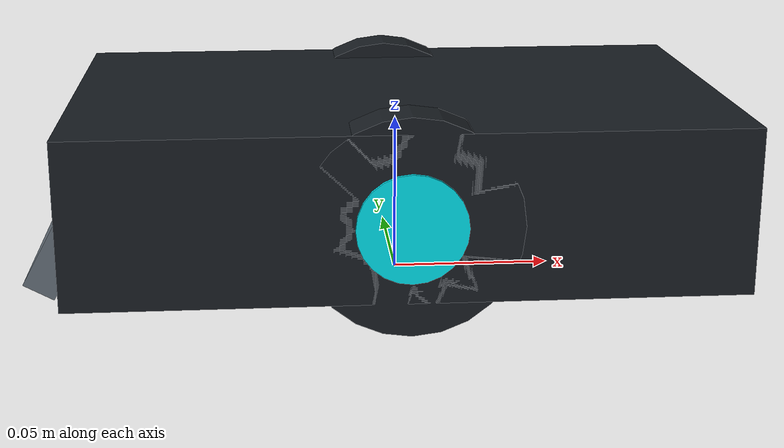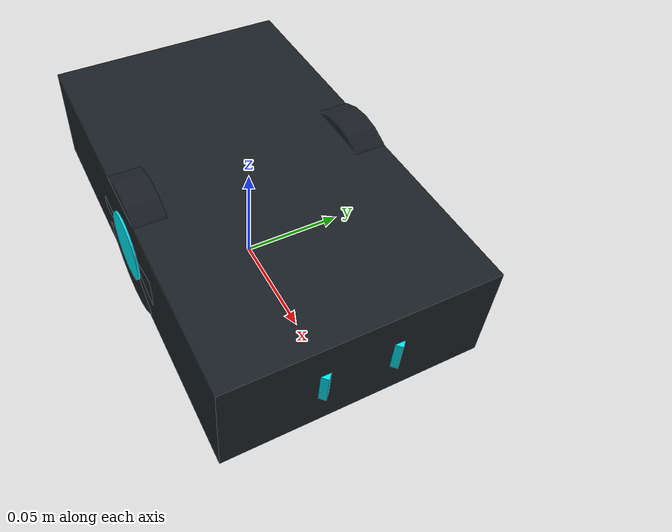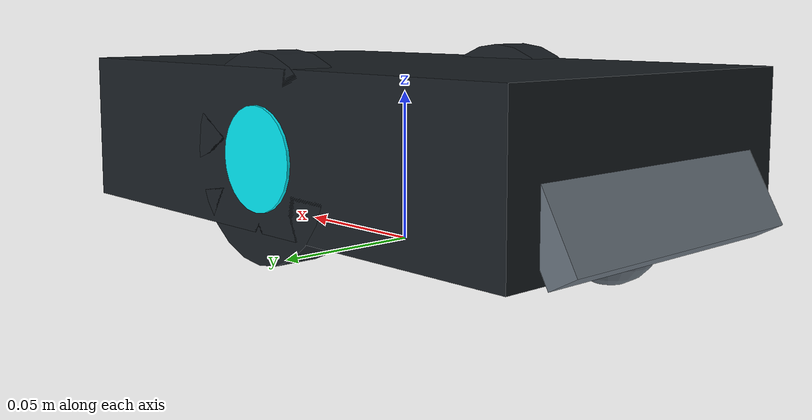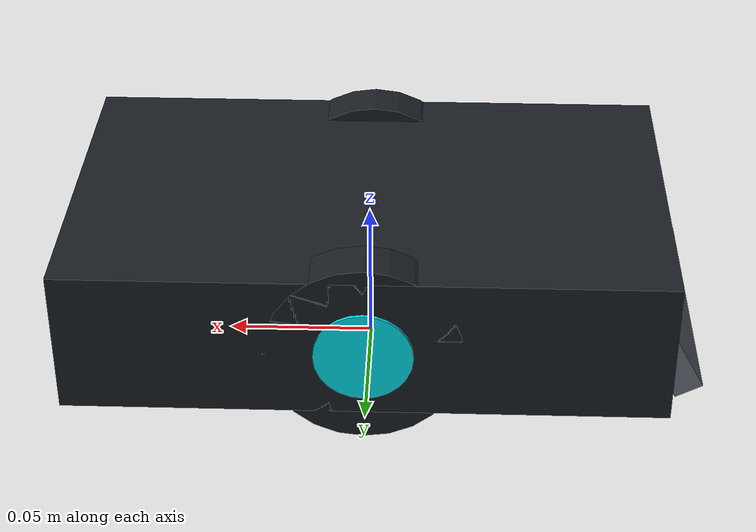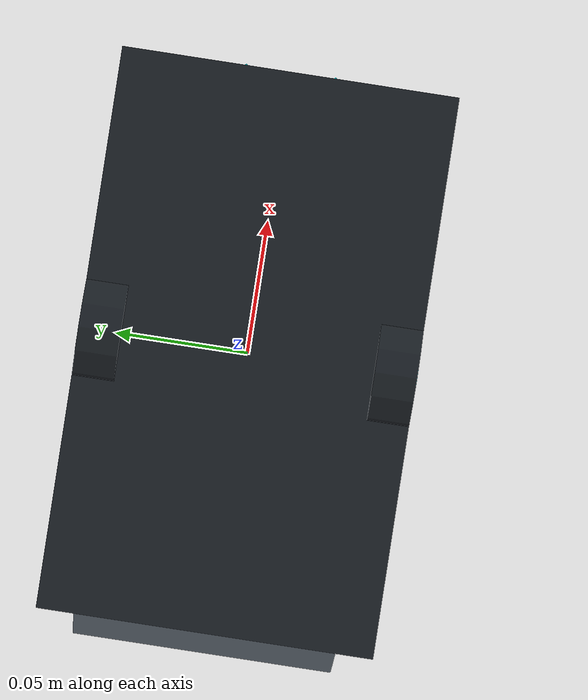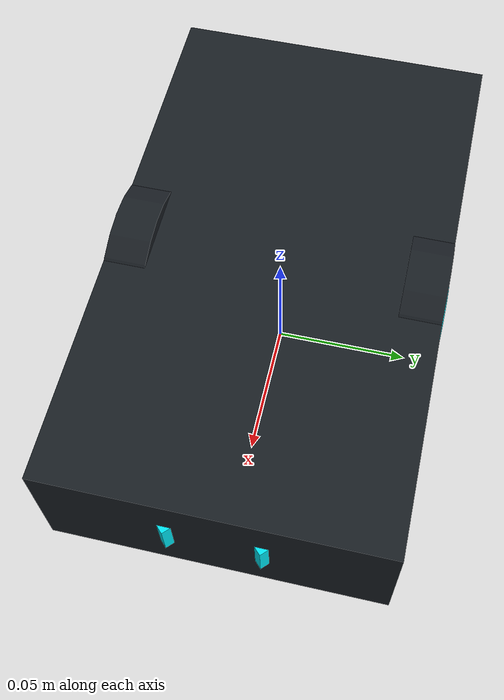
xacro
<robot name="my_car_camera" xmlns:xacro="http://wiki.ros.org/xacro">
    <xacro:include filename="gazebo_head.xacro" />
    <xacro:include filename="gazebo_car.xacro" />
    <xacro:include filename="gazebo_laser.xacro" />
    <xacro:include filename="gazebo_camera.xacro" />
    <xacro:include filename="gazebo_sensors.xacro" />

    <!-- 修复后的move.urdf.xacro内容 - 解决TF冲突 -->
    <!-- 传动实现:用于连接控制器与关节 -->
    <xacro:macro name="joint_trans" params="joint_name">
        <transmission name="${joint_name}_trans">
            <type>transmission_interface/SimpleTransmission</type>
            <joint name="${joint_name}">
                <hardwareInterface>hardware_interface/VelocityJointInterface</hardwareInterface>
            </joint>
            <actuator name="${joint_name}_motor">
                <hardwareInterface>hardware_interface/VelocityJointInterface</hardwareInterface>
                <mechanicalReduction>1</mechanicalReduction>
            </actuator>
        </transmission>
    </xacro:macro>

    <!-- 只为两个驱动轮配置传动装置 -->
    <xacro:joint_trans joint_name="left_wheel2base_link" />
    <xacro:joint_trans joint_name="right_wheel2base_link" />

    <!-- 修复后的差分驱动控制器 - 解决TF冲突和速度问题 -->
    <gazebo>
        <plugin name="differential_drive_controller" filename="libgazebo_ros_diff_drive.so">
            <rosDebugLevel>Info</rosDebugLevel>
            <publishWheelTF>true</publishWheelTF>           <!-- 让gazebo负责wheel TF -->
            <robotNamespace>/</robotNamespace>
            <publishTf>true</publishTf>                     <!-- 发布odom->base_footprint -->
            <publishWheelJointState>true</publishWheelJointState>  <!-- 发布关节状态 -->
            <alwaysOn>true</alwaysOn>
            <updateRate>20.0</updateRate>                   <!-- 降低更新频率，减少冲突 -->
            <legacyMode>true</legacyMode>
            <leftJoint>left_wheel2base_link</leftJoint>
            <rightJoint>right_wheel2base_link</rightJoint>
            <wheelSeparation>${base_link_width - wheel_length}</wheelSeparation>
            <wheelDiameter>${wheel_radius * 2}</wheelDiameter>
            <broadcastTF>true</broadcastTF>                 <!-- 确保发布TF -->
            <wheelTorque>100</wheelTorque>                  <!-- 增加扭矩 -->
            <wheelAcceleration>5.0</wheelAcceleration>      <!-- 增加加速度 -->
            <commandTopic>cmd_vel</commandTopic>
            <odometryFrame>odom</odometryFrame>
            <odometryTopic>odom</odometryTopic>
            <robotBaseFrame>base_footprint</robotBaseFrame>

            <!-- 添加噪声模型，提高仿真真实性 -->
            <odometrySource>world</odometrySource>          <!-- 使用world坐标系 -->
            <publishOdomTF>true</publishOdomTF>             <!-- 发布odom TF -->
        </plugin>
    </gazebo>
</robot>

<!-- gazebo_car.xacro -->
<!-- "赛博先锋" - 智能小车美学升级版 -->
<!-- 严格遵守约束: 不改变任何原有名称、参数、物理属性或轮子位置公式。 -->
<robot name="my_base" xmlns:xacro="http://wiki.ros.org/xacro">

    <xacro:property name="PI" value="3.1415926"/>

    <!-- [美化] 定义一套更具冲击力的专业配色方案 -->
    <material name="matte_black">
        <color rgba="0.1 0.12 0.14 1.0" />  <!-- 主体颜色: 哑光黑 -->
    </material>
    <material name="gunmetal_grey">
        <color rgba="0.4 0.44 0.48 1.0" />  <!-- 装甲颜色: 炮铜灰 -->
    </material>
    <material name="cyber_cyan_glow">
        <color rgba="0.0 0.9 0.95 1.0" />  <!-- 点缀颜色: 赛博青辉光 -->
    </material>
    <!-- 保留您原始的black材质定义 -->
    <material name="black">
        <color rgba="0.0 0.0 0.0 1.0" />
    </material>

    <!-- 核心物理参数 (保持您原始的定义不变) -->
 <!-- 核心物理参数 -->
<xacro:property name="base_footprint_radius" value="0.001" />
<xacro:property name="base_link_length" value="0.2" />
<!-- [修改] 将车身宽度从0.15米改为0.12米 -->
<xacro:property name="base_link_width" value="0.12" />
<xacro:property name="base_link_height" value="0.05" />
    <xacro:property name="earth_space" value="0.01" />
    <xacro:property name="base_link_m" value="0.5" />

    <xacro:property name="caster_radius" value="0.015" />
    <xacro:property name="caster_m" value="0.01" />

    <xacro:property name="wheel_radius" value="0.0325" />
    <xacro:property name="wheel_length" value="0.015" />
    <xacro:property name="wheel_m" value="0.05" />

    <!-- 惯性矩阵宏 (保持您原始的定义不变) -->
    <xacro:macro name="Box_inertial_matrix" params="m l w h"><inertial><mass value="${m}" /><inertia ixx="${m*(w*w+h*h)/12}" ixy="0" ixz="0" iyy="${m*(l*l+h*h)/12}" iyz="0" izz="${m*(l*l+w*w)/12}" /></inertial></xacro:macro>
    <xacro:macro name="cylinder_inertial_matrix" params="m r h"><inertial><mass value="${m}" /><inertia ixx="${m*(3*r*r+h*h)/12}" ixy="0" ixz="0" iyy="${m*(3*r*r+h*h)/12}" iyz="0" izz="${m*r*r/2}" /></inertial></xacro:macro>
    <xacro:macro name="sphere_inertial_matrix" params="m r"><inertial><mass value="${m}" /><inertia ixx="${2*m*r*r/5}" ixy="0" ixz="0" iyy="${2*m*r*r/5}" iyz="0" izz="${2*m*r*r/5}" /></inertial></xacro:macro>

    <link name="base_footprint">
      <!-- 保持您原始的定义不变 -->
      <visual>
        <geometry>
          <sphere radius="${base_footprint_radius}" />
        </geometry>
      </visual>
    </link>

    <!-- 主底盘 (物理核心) -->
    <link name="base_link">
      <visual>
        <geometry>
          <box size="${base_link_length} ${base_link_width} ${base_link_height}" />
        </geometry>
        <material name="matte_black" />
      </visual>
      <!-- 2. 前脸V型辉光灯带 -->
      <visual>
        <origin xyz="${base_link_length/2 - 0.01} 0.025 0" rpy="0 0 -0.785"/>
        <geometry>
            <box size="0.03 0.005 0.015"/>
        </geometry>
        <material name="cyber_cyan_glow"/>
      </visual>
      <visual>
        <origin xyz="${base_link_length/2 - 0.01} -0.025 0" rpy="0 0 0.785"/>
        <geometry>
            <box size="0.03 0.005 0.015"/>
        </geometry>
        <material name="cyber_cyan_glow"/>
      </visual>
      <!-- 3. 尾部散热格栅 -->
       <visual>
        <origin xyz="${-base_link_length/2} 0 -0.01" rpy="0 0.5 0"/>
        <geometry>
            <box size="0.01 ${base_link_width*0.8} ${base_link_height*0.6}"/>
        </geometry>
        <material name="gunmetal_grey"/>
      </visual>

      <!-- 碰撞和物理模型 (保持您原始的定义不变) -->
      <collision>
        <geometry>
          <box size="${base_link_length} ${base_link_width} ${base_link_height}" />
        </geometry>
      </collision>
      <xacro:Box_inertial_matrix m="${base_link_m}" l="${base_link_length}" w="${base_link_width}" h="${base_link_height}" />
    </link>

    <joint name="base_link2base_footprint" type="fixed">
      <parent link="base_footprint" />
      <child link="base_link" />
      <origin xyz="0 0 ${earth_space + base_link_height / 2}" />
    </joint>
    <gazebo reference="base_link">
        <material>Gazebo/DarkGrey</material>
    </gazebo>

    <!-- 驱动轮宏 (保持您原始的定义不变) -->
    <xacro:macro name="add_drive_wheel" params="name y_pos">
      <link name="${name}_wheel">
        <!-- 您的原始轮胎视觉，颜色改为哑光黑 -->
        <visual>
          <geometry>
            <cylinder radius="${wheel_radius}" length="${wheel_length}" />
          </geometry>
          <origin xyz="0.0 0.0 0.0" rpy="${PI / 2} 0.0 0.0" />
          <material name="matte_black" />
        </visual>
        <!-- [美化] 添加一个纯视觉的辉光轮毂 -->
        <visual>
            <geometry>
                <cylinder radius="${wheel_radius*0.5}" length="${wheel_length+0.002}"/>
            </geometry>
            <origin xyz="0 0 0" rpy="${PI / 2} 0 0"/>
            <material name="cyber_cyan_glow"/>
        </visual>
        <!-- 碰撞和物理模型 (保持您原始的定义不变) -->
        <collision>
          <geometry>
            <cylinder radius="${wheel_radius}" length="${wheel_length}" />
          </geometry>
          <origin xyz="0.0 0.0 0.0" rpy="${PI / 2} 0.0 0.0" />
        </collision>
        <xacro:cylinder_inertial_matrix m="${wheel_m}" r="${wheel_radius}" h="${wheel_length}" />
      </link>

      <joint name="${name}_wheel2base_link" type="continuous">
        <parent link="base_link" />
        <child link="${name}_wheel" />
        <origin xyz="0.0 ${y_pos} ${-(earth_space + base_link_height / 2 - wheel_radius)}" />
        <axis xyz="0 1 0" />
      </joint>

      <gazebo reference="${name}_wheel">
        <material>Gazebo/Red</material>
      </gazebo>
    </xacro:macro>

    <!-- 万向轮宏 (保持您原始的定义不变) -->
    <xacro:macro name="add_caster_wheel" params="name x_pos">
      <link name="${name}_caster">
        <visual>
          <geometry>
            <sphere radius="${caster_radius}" />
          </geometry>
          <!-- [美化] 颜色改为炮铜灰以匹配车身 -->
          <material name="gunmetal_grey" />
        </visual>
        <collision>
          <geometry>
            <sphere radius="${caster_radius}" />
          </geometry>
        </collision>
        <xacro:sphere_inertial_matrix m="${caster_m}" r="${caster_radius}" />
      </link>
      <joint name="${name}_caster2base_link" type="fixed">
        <parent link="base_link" />
        <child link="${name}_caster" />
        <origin xyz="${x_pos} 0.0 ${-(earth_space + base_link_height / 2 - caster_radius)}" />
      </joint>
      <gazebo reference="${name}_caster">
        <material>Gazebo/Grey</material>
        <mu1>0.1</mu1>
        <mu2>0.1</mu2>
      </gazebo>
    </xacro:macro>

    <!-- 轮子位置 (使用您原始的公式，完全不变) -->
    <xacro:add_drive_wheel name="left" y_pos="${base_link_width/2 - wheel_length/2}" />
    <xacro:add_drive_wheel name="right" y_pos="${-(base_link_width/2 - wheel_length/2)}" />

    <xacro:add_caster_wheel name="front" x_pos="${base_link_length/2 - caster_radius}" />
    <xacro:add_caster_wheel name="rear" x_pos="${-(base_link_length/2 - caster_radius)}" />

</robot>
